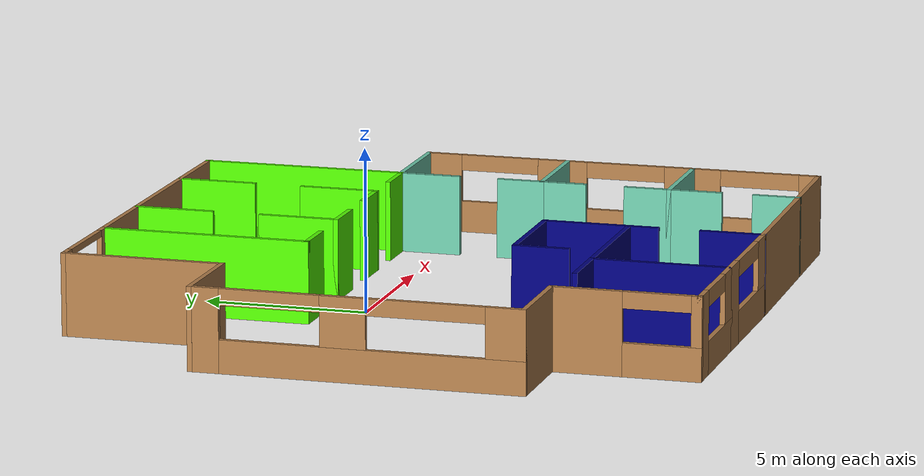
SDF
<?xml version='1.0'?>
<sdf version='1.6'>
  <model name='Office_Building'>
    <pose frame=''>1.54423 -1.89975 0 0 -0 0</pose>
    <link name='Wall_1'>
      <pose frame=''>-4.9967 9.51095 0 0 -0 0</pose>
      <visual name='Wall_1_Visual_0'>
        <pose frame=''>-1.46283 0 1.25 0 -0 0</pose>
        <geometry>
          <box>
            <size>0.574332 0.15 2.5</size>
          </box>
        </geometry>
        <material>
          <script>
            <uri>file://media/materials/scripts/gazebo.material</uri>
            <name>Gazebo/Wood</name>
          </script>
          <ambient>1 1 1 1</ambient>
        </material>
        <meta>
          <layer>0</layer>
        </meta>
      </visual>
      <collision name='Wall_1_Collision_0'>
        <geometry>
          <box>
            <size>0.574332 0.15 2.5</size>
          </box>
        </geometry>
        <pose frame=''>-1.46283 0 1.25 0 -0 0</pose>
      </collision>
      <visual name='Wall_1_Visual_1'>
        <pose frame=''>0.287166 0 0.4 0 -0 0</pose>
        <geometry>
          <box>
            <size>2.92567 0.15 0.8</size>
          </box>
        </geometry>
        <material>
          <script>
            <uri>file://media/materials/scripts/gazebo.material</uri>
            <name>Gazebo/Wood</name>
          </script>
          <ambient>1 1 1 1</ambient>
        </material>
        <meta>
          <layer>0</layer>
        </meta>
      </visual>
      <collision name='Wall_1_Collision_1'>
        <geometry>
          <box>
            <size>2.92567 0.15 0.8</size>
          </box>
        </geometry>
        <pose frame=''>0.287166 0 0.4 0 -0 0</pose>
      </collision>
      <visual name='Wall_1_Visual_2'>
        <pose frame=''>1.53717 0 1.65 0 -0 0</pose>
        <geometry>
          <box>
            <size>0.425668 0.15 1.7</size>
          </box>
        </geometry>
        <material>
          <script>
            <uri>file://media/materials/scripts/gazebo.material</uri>
            <name>Gazebo/Wood</name>
          </script>
          <ambient>1 1 1 1</ambient>
        </material>
        <meta>
          <layer>0</layer>
        </meta>
      </visual>
      <collision name='Wall_1_Collision_2'>
        <geometry>
          <box>
            <size>0.425668 0.15 1.7</size>
          </box>
        </geometry>
        <pose frame=''>1.53717 0 1.65 0 -0 0</pose>
      </collision>
      <visual name='Wall_1_Visual_3'>
        <pose frame=''>0.074332 0 2.4 0 -0 0</pose>
        <geometry>
          <box>
            <size>2.5 0.15 0.2</size>
          </box>
        </geometry>
        <material>
          <script>
            <uri>file://media/materials/scripts/gazebo.material</uri>
            <name>Gazebo/Wood</name>
          </script>
          <ambient>1 1 1 1</ambient>
        </material>
        <meta>
          <layer>0</layer>
        </meta>
      </visual>
      <collision name='Wall_1_Collision_3'>
        <geometry>
          <box>
            <size>2.5 0.15 0.2</size>
          </box>
        </geometry>
        <pose frame=''>0.074332 0 2.4 0 -0 0</pose>
      </collision>
    </link>
    <link name='Wall_12'>
      <collision name='Wall_12_Collision'>
        <geometry>
          <box>
            <size>1.5 0.15 2.5</size>
          </box>
        </geometry>
        <pose frame=''>0 0 1.25 0 -0 0</pose>
      </collision>
      <visual name='Wall_12_Visual'>
        <pose frame=''>0 0 1.25 0 -0 0</pose>
        <geometry>
          <box>
            <size>1.5 0.15 2.5</size>
          </box>
        </geometry>
        <material>
          <script>
            <uri>file://media/materials/scripts/gazebo.material</uri>
            <name>Gazebo/Grey</name>
          </script>
          <ambient>0.333333 1 0 1</ambient>
        </material>
        <meta>
          <layer>0</layer>
        </meta>
      </visual>
      <pose frame=''>0.345497 3.18997 0 0 -0 0</pose>
    </link>
    <link name='Wall_16'>
      <collision name='Wall_16_Collision'>
        <geometry>
          <box>
            <size>1.5 0.15 2.5</size>
          </box>
        </geometry>
        <pose frame=''>0 0 1.25 0 -0 0</pose>
      </collision>
      <visual name='Wall_16_Visual'>
        <pose frame=''>0 0 1.25 0 -0 0</pose>
        <geometry>
          <box>
            <size>1.5 0.15 2.5</size>
          </box>
        </geometry>
        <material>
          <script>
            <uri>file://media/materials/scripts/gazebo.material</uri>
            <name>Gazebo/Grey</name>
          </script>
          <ambient>0.333333 1 0 1</ambient>
        </material>
        <meta>
          <layer>0</layer>
        </meta>
      </visual>
      <pose frame=''>3.0455 3.18997 0 0 -0 0</pose>
    </link>
    <link name='Wall_18'>
      <collision name='Wall_18_Collision'>
        <geometry>
          <box>
            <size>1.5 0.15 2.5</size>
          </box>
        </geometry>
        <pose frame=''>0 0 1.25 0 -0 0</pose>
      </collision>
      <visual name='Wall_18_Visual'>
        <pose frame=''>0 0 1.25 0 -0 0</pose>
        <geometry>
          <box>
            <size>1.5 0.15 2.5</size>
          </box>
        </geometry>
        <material>
          <script>
            <uri>file://media/materials/scripts/gazebo.material</uri>
            <name>Gazebo/Grey</name>
          </script>
          <ambient>0.333333 1 0 1</ambient>
        </material>
        <meta>
          <layer>0</layer>
        </meta>
      </visual>
      <pose frame=''>5.7455 3.18997 0 0 -0 0</pose>
    </link>
    <link name='Wall_2'>
      <collision name='Wall_2_Collision'>
        <geometry>
          <box>
            <size>6.5 0.15 2.5</size>
          </box>
        </geometry>
        <pose frame=''>0 0 1.25 0 -0 0</pose>
      </collision>
      <visual name='Wall_2_Visual'>
        <pose frame=''>0 0 1.25 0 -0 0</pose>
        <geometry>
          <box>
            <size>6.5 0.15 2.5</size>
          </box>
        </geometry>
        <material>
          <script>
            <uri>file://media/materials/scripts/gazebo.material</uri>
            <name>Gazebo/Grey</name>
          </script>
          <ambient>0.333333 1 0 1</ambient>
        </material>
        <meta>
          <layer>0</layer>
        </meta>
      </visual>
      <pose frame=''>-3.3217 6.33595 0 0 0 -1.5708</pose>
    </link>
    <link name='Wall_22'>
      <collision name='Wall_22_Collision'>
        <geometry>
          <box>
            <size>6.5 0.15 2.5</size>
          </box>
        </geometry>
        <pose frame=''>0 0 1.25 0 -0 0</pose>
      </collision>
      <visual name='Wall_22_Visual'>
        <pose frame=''>0 0 1.25 0 -0 0</pose>
        <geometry>
          <box>
            <size>6.5 0.15 2.5</size>
          </box>
        </geometry>
        <material>
          <script>
            <uri>file://media/materials/scripts/gazebo.material</uri>
            <name>Gazebo/Grey</name>
          </script>
          <ambient>0.333333 1 0 1</ambient>
        </material>
        <meta>
          <layer>0</layer>
        </meta>
      </visual>
      <pose frame=''>6.4205 6.36497 0 0 -0 1.5708</pose>
    </link>
    <link name='Wall_23'>
      <collision name='Wall_23_Collision'>
        <geometry>
          <box>
            <size>9.89224 0.15 2.5</size>
          </box>
        </geometry>
        <pose frame=''>0 0 1.25 0 -0 0</pose>
      </collision>
      <visual name='Wall_23_Visual'>
        <pose frame=''>0 0 1.25 0 -0 0</pose>
        <geometry>
          <box>
            <size>9.89224 0.15 2.5</size>
          </box>
        </geometry>
        <material>
          <script>
            <uri>file://media/materials/scripts/gazebo.material</uri>
            <name>Gazebo/Wood</name>
          </script>
          <ambient>1 1 1 1</ambient>
        </material>
        <meta>
          <layer>0</layer>
        </meta>
      </visual>
      <pose frame=''>1.5494 9.52546 0 0 0 -3.13861</pose>
    </link>
    <link name='Wall_25'>
      <collision name='Wall_25_Collision'>
        <geometry>
          <box>
            <size>2.5 0.15 2.5</size>
          </box>
        </geometry>
        <pose frame=''>0 0 1.25 0 -0 0</pose>
      </collision>
      <visual name='Wall_25_Visual'>
        <pose frame=''>0 0 1.25 0 -0 0</pose>
        <geometry>
          <box>
            <size>2.5 0.15 2.5</size>
          </box>
        </geometry>
        <material>
          <script>
            <uri>file://media/materials/scripts/gazebo.material</uri>
            <name>Gazebo/Grey</name>
          </script>
          <ambient>0.333333 1 0 1</ambient>
        </material>
        <meta>
          <layer>0</layer>
        </meta>
      </visual>
      <pose frame=''>-0.329504 4.36497 0 0 -0 1.5708</pose>
    </link>
    <link name='Wall_3'>
      <collision name='Wall_3_Collision'>
        <geometry>
          <box>
            <size>1.5 0.15 2.5</size>
          </box>
        </geometry>
        <pose frame=''>0 0 1.25 0 -0 0</pose>
      </collision>
      <visual name='Wall_3_Visual'>
        <pose frame=''>0 0 1.25 0 -0 0</pose>
        <geometry>
          <box>
            <size>1.5 0.15 2.5</size>
          </box>
        </geometry>
        <material>
          <script>
            <uri>file://media/materials/scripts/gazebo.material</uri>
            <name>Gazebo/Grey</name>
          </script>
          <ambient>0.333333 1 0 1</ambient>
        </material>
        <meta>
          <layer>0</layer>
        </meta>
      </visual>
      <pose frame=''>-2.6467 3.16095 0 0 -0 0</pose>
    </link>
    <link name='Wall_30'>
      <collision name='Wall_30_Collision'>
        <geometry>
          <box>
            <size>2.5 0.15 2.5</size>
          </box>
        </geometry>
        <pose frame=''>0 0 1.25 0 -0 0</pose>
      </collision>
      <visual name='Wall_30_Visual'>
        <pose frame=''>0 0 1.25 0 -0 0</pose>
        <geometry>
          <box>
            <size>2.5 0.15 2.5</size>
          </box>
        </geometry>
        <material>
          <script>
            <uri>file://media/materials/scripts/gazebo.material</uri>
            <name>Gazebo/Grey</name>
          </script>
          <ambient>0.333333 1 0 1</ambient>
        </material>
        <meta>
          <layer>0</layer>
        </meta>
      </visual>
      <pose frame=''>-0.329504 8.31497 0 0 -0 1.5708</pose>
    </link>
    <link name='Wall_32'>
      <collision name='Wall_32_Collision'>
        <geometry>
          <box>
            <size>2.5 0.15 2.5</size>
          </box>
        </geometry>
        <pose frame=''>0 0 1.25 0 -0 0</pose>
      </collision>
      <visual name='Wall_32_Visual'>
        <pose frame=''>0 0 1.25 0 -0 0</pose>
        <geometry>
          <box>
            <size>2.5 0.15 2.5</size>
          </box>
        </geometry>
        <material>
          <script>
            <uri>file://media/materials/scripts/gazebo.material</uri>
            <name>Gazebo/Grey</name>
          </script>
          <ambient>0.333333 1 0 1</ambient>
        </material>
        <meta>
          <layer>0</layer>
        </meta>
      </visual>
      <pose frame=''>3.7205 4.36497 0 0 -0 1.5708</pose>
    </link>
    <link name='Wall_36'>
      <collision name='Wall_36_Collision'>
        <geometry>
          <box>
            <size>2.5 0.15 2.5</size>
          </box>
        </geometry>
        <pose frame=''>0 0 1.25 0 -0 0</pose>
      </collision>
      <visual name='Wall_36_Visual'>
        <pose frame=''>0 0 1.25 0 -0 0</pose>
        <geometry>
          <box>
            <size>2.5 0.15 2.5</size>
          </box>
        </geometry>
        <material>
          <script>
            <uri>file://media/materials/scripts/gazebo.material</uri>
            <name>Gazebo/Grey</name>
          </script>
          <ambient>0.333333 1 0 1</ambient>
        </material>
        <meta>
          <layer>0</layer>
        </meta>
      </visual>
      <pose frame=''>3.7205 8.31497 0 0 -0 1.5708</pose>
    </link>
    <link name='Wall_45'>
      <pose frame=''>-9.5217 -0.264053 0 0 0 -1.5708</pose>
      <visual name='Wall_45_Visual_0'>
        <pose frame=''>-4.52501 0 1.25 0 -0 0</pose>
        <geometry>
          <box>
            <size>0.949979 0.15 2.5</size>
          </box>
        </geometry>
        <material>
          <script>
            <uri>file://media/materials/scripts/gazebo.material</uri>
            <name>Gazebo/Wood</name>
          </script>
          <ambient>1 1 1 1</ambient>
        </material>
        <meta>
          <layer>0</layer>
        </meta>
      </visual>
      <collision name='Wall_45_Collision_0'>
        <geometry>
          <box>
            <size>0.949979 0.15 2.5</size>
          </box>
        </geometry>
        <pose frame=''>-4.52501 0 1.25 0 -0 0</pose>
      </collision>
      <visual name='Wall_45_Visual_1'>
        <pose frame=''>0.47499 0 0.5 0 -0 0</pose>
        <geometry>
          <box>
            <size>9.05002 0.15 1</size>
          </box>
        </geometry>
        <material>
          <script>
            <uri>file://media/materials/scripts/gazebo.material</uri>
            <name>Gazebo/Wood</name>
          </script>
          <ambient>1 1 1 1</ambient>
        </material>
        <meta>
          <layer>0</layer>
        </meta>
      </visual>
      <collision name='Wall_45_Collision_1'>
        <geometry>
          <box>
            <size>9.05002 0.15 1</size>
          </box>
        </geometry>
        <pose frame=''>0.47499 0 0.5 0 -0 0</pose>
      </collision>
      <visual name='Wall_45_Visual_2'>
        <pose frame=''>-0.367725 0 1.75 0 -0 0</pose>
        <geometry>
          <box>
            <size>1.36459 0.15 1.5</size>
          </box>
        </geometry>
        <material>
          <script>
            <uri>file://media/materials/scripts/gazebo.material</uri>
            <name>Gazebo/Wood</name>
          </script>
          <ambient>1 1 1 1</ambient>
        </material>
        <meta>
          <layer>0</layer>
        </meta>
      </visual>
      <collision name='Wall_45_Collision_2'>
        <geometry>
          <box>
            <size>1.36459 0.15 1.5</size>
          </box>
        </geometry>
        <pose frame=''>-0.367725 0 1.75 0 -0 0</pose>
      </collision>
      <visual name='Wall_45_Visual_3'>
        <pose frame=''>4.40728 0 1.75 0 -0 0</pose>
        <geometry>
          <box>
            <size>1.18543 0.15 1.5</size>
          </box>
        </geometry>
        <material>
          <script>
            <uri>file://media/materials/scripts/gazebo.material</uri>
            <name>Gazebo/Wood</name>
          </script>
          <ambient>1 1 1 1</ambient>
        </material>
        <meta>
          <layer>0</layer>
        </meta>
      </visual>
      <collision name='Wall_45_Collision_3'>
        <geometry>
          <box>
            <size>1.18543 0.15 1.5</size>
          </box>
        </geometry>
        <pose frame=''>4.40728 0 1.75 0 -0 0</pose>
      </collision>
      <visual name='Wall_45_Visual_4'>
        <pose frame=''>-2.55002 0 2.25 0 -0 0</pose>
        <geometry>
          <box>
            <size>3 0.15 0.5</size>
          </box>
        </geometry>
        <material>
          <script>
            <uri>file://media/materials/scripts/gazebo.material</uri>
            <name>Gazebo/Wood</name>
          </script>
          <ambient>1 1 1 1</ambient>
        </material>
        <meta>
          <layer>0</layer>
        </meta>
      </visual>
      <collision name='Wall_45_Collision_4'>
        <geometry>
          <box>
            <size>3 0.15 0.5</size>
          </box>
        </geometry>
        <pose frame=''>-2.55002 0 2.25 0 -0 0</pose>
      </collision>
      <visual name='Wall_45_Visual_5'>
        <pose frame=''>2.06457 0 2.25 0 -0 0</pose>
        <geometry>
          <box>
            <size>3.5 0.15 0.5</size>
          </box>
        </geometry>
        <material>
          <script>
            <uri>file://media/materials/scripts/gazebo.material</uri>
            <name>Gazebo/Wood</name>
          </script>
          <ambient>1 1 1 1</ambient>
        </material>
        <meta>
          <layer>0</layer>
        </meta>
      </visual>
      <collision name='Wall_45_Collision_5'>
        <geometry>
          <box>
            <size>3.5 0.15 0.5</size>
          </box>
        </geometry>
        <pose frame=''>2.06457 0 2.25 0 -0 0</pose>
      </collision>
    </link>
    <link name='Wall_46'>
      <collision name='Wall_46_Collision'>
        <geometry>
          <box>
            <size>3 0.15 2.5</size>
          </box>
        </geometry>
        <pose frame=''>0 0 1.25 0 -0 0</pose>
      </collision>
      <visual name='Wall_46_Visual'>
        <pose frame=''>0 0 1.25 0 -0 0</pose>
        <geometry>
          <box>
            <size>3 0.15 2.5</size>
          </box>
        </geometry>
        <material>
          <script>
            <uri>file://media/materials/scripts/gazebo.material</uri>
            <name>Gazebo/Wood</name>
          </script>
          <ambient>1 1 1 1</ambient>
        </material>
        <meta>
          <layer>0</layer>
        </meta>
      </visual>
      <pose frame=''>-8.0967 -5.18905 0 0 -0 0</pose>
    </link>
    <link name='Wall_48'>
      <pose frame=''>-6.6717 -7.36405 0 0 0 -1.5708</pose>
      <visual name='Wall_48_Visual_0'>
        <pose frame=''>-1.15861 0 1.25 0 -0 0</pose>
        <geometry>
          <box>
            <size>2.18277 0.15 2.5</size>
          </box>
        </geometry>
        <material>
          <script>
            <uri>file://media/materials/scripts/gazebo.material</uri>
            <name>Gazebo/Wood</name>
          </script>
          <ambient>0 0 0.498039 1</ambient>
        </material>
        <meta>
          <layer>0</layer>
        </meta>
      </visual>
      <collision name='Wall_48_Collision_0'>
        <geometry>
          <box>
            <size>2.18277 0.15 2.5</size>
          </box>
        </geometry>
        <pose frame=''>-1.15861 0 1.25 0 -0 0</pose>
      </collision>
      <visual name='Wall_48_Visual_1'>
        <pose frame=''>1.09139 0 0.5 0 -0 0</pose>
        <geometry>
          <box>
            <size>2.31723 0.15 1</size>
          </box>
        </geometry>
        <material>
          <script>
            <uri>file://media/materials/scripts/gazebo.material</uri>
            <name>Gazebo/Wood</name>
          </script>
          <ambient>0 0 0.498039 1</ambient>
        </material>
        <meta>
          <layer>0</layer>
        </meta>
      </visual>
      <collision name='Wall_48_Collision_1'>
        <geometry>
          <box>
            <size>2.31723 0.15 1</size>
          </box>
        </geometry>
        <pose frame=''>1.09139 0 0.5 0 -0 0</pose>
      </collision>
      <visual name='Wall_48_Visual_2'>
        <pose frame=''>2.09139 0 1.75 0 -0 0</pose>
        <geometry>
          <box>
            <size>0.317226 0.15 1.5</size>
          </box>
        </geometry>
        <material>
          <script>
            <uri>file://media/materials/scripts/gazebo.material</uri>
            <name>Gazebo/Wood</name>
          </script>
          <ambient>0 0 0.498039 1</ambient>
        </material>
        <meta>
          <layer>0</layer>
        </meta>
      </visual>
      <collision name='Wall_48_Collision_2'>
        <geometry>
          <box>
            <size>0.317226 0.15 1.5</size>
          </box>
        </geometry>
        <pose frame=''>2.09139 0 1.75 0 -0 0</pose>
      </collision>
      <visual name='Wall_48_Visual_3'>
        <pose frame=''>0.932774 0 2.25 0 -0 0</pose>
        <geometry>
          <box>
            <size>2 0.15 0.5</size>
          </box>
        </geometry>
        <material>
          <script>
            <uri>file://media/materials/scripts/gazebo.material</uri>
            <name>Gazebo/Wood</name>
          </script>
          <ambient>0 0 0.498039 1</ambient>
        </material>
        <meta>
          <layer>0</layer>
        </meta>
      </visual>
      <collision name='Wall_48_Collision_3'>
        <geometry>
          <box>
            <size>2 0.15 0.5</size>
          </box>
        </geometry>
        <pose frame=''>0.932774 0 2.25 0 -0 0</pose>
      </collision>
    </link>
    <link name='Wall_49'>
      <pose frame=''>-4.8717 -9.53905 0 0 -0 0</pose>
      <visual name='Wall_49_Visual_0'>
        <pose frame=''>-1.4581 0 1.25 0 -0 0</pose>
        <geometry>
          <box>
            <size>0.833803 0.15 2.5</size>
          </box>
        </geometry>
        <material>
          <script>
            <uri>file://media/materials/scripts/gazebo.material</uri>
            <name>Gazebo/Wood</name>
          </script>
          <ambient>0 0 0.498039 1</ambient>
        </material>
        <meta>
          <layer>0</layer>
        </meta>
      </visual>
      <collision name='Wall_49_Collision_0'>
        <geometry>
          <box>
            <size>0.833803 0.15 2.5</size>
          </box>
        </geometry>
        <pose frame=''>-1.4581 0 1.25 0 -0 0</pose>
      </collision>
      <visual name='Wall_49_Visual_1'>
        <pose frame=''>0.416901 0 0.5 0 -0 0</pose>
        <geometry>
          <box>
            <size>2.9162 0.15 1</size>
          </box>
        </geometry>
        <material>
          <script>
            <uri>file://media/materials/scripts/gazebo.material</uri>
            <name>Gazebo/Wood</name>
          </script>
          <ambient>0 0 0.498039 1</ambient>
        </material>
        <meta>
          <layer>0</layer>
        </meta>
      </visual>
      <collision name='Wall_49_Collision_1'>
        <geometry>
          <box>
            <size>2.9162 0.15 1</size>
          </box>
        </geometry>
        <pose frame=''>0.416901 0 0.5 0 -0 0</pose>
      </collision>
      <visual name='Wall_49_Visual_2'>
        <pose frame=''>1.4169 0 1.75 0 -0 0</pose>
        <geometry>
          <box>
            <size>0.916197 0.15 1.5</size>
          </box>
        </geometry>
        <material>
          <script>
            <uri>file://media/materials/scripts/gazebo.material</uri>
            <name>Gazebo/Wood</name>
          </script>
          <ambient>0 0 0.498039 1</ambient>
        </material>
        <meta>
          <layer>0</layer>
        </meta>
      </visual>
      <collision name='Wall_49_Collision_2'>
        <geometry>
          <box>
            <size>0.916197 0.15 1.5</size>
          </box>
        </geometry>
        <pose frame=''>1.4169 0 1.75 0 -0 0</pose>
      </collision>
      <visual name='Wall_49_Visual_3'>
        <pose frame=''>-0.041197 0 2.25 0 -0 0</pose>
        <geometry>
          <box>
            <size>2 0.15 0.5</size>
          </box>
        </geometry>
        <material>
          <script>
            <uri>file://media/materials/scripts/gazebo.material</uri>
            <name>Gazebo/Wood</name>
          </script>
          <ambient>0 0 0.498039 1</ambient>
        </material>
        <meta>
          <layer>0</layer>
        </meta>
      </visual>
      <collision name='Wall_49_Collision_3'>
        <geometry>
          <box>
            <size>2 0.15 0.5</size>
          </box>
        </geometry>
        <pose frame=''>-0.041197 0 2.25 0 -0 0</pose>
      </collision>
    </link>
    <link name='Wall_50'>
      <collision name='Wall_50_Collision'>
        <geometry>
          <box>
            <size>4.25 0.15 2.5</size>
          </box>
        </geometry>
        <pose frame=''>0 0 1.25 0 -0 0</pose>
      </collision>
      <visual name='Wall_50_Visual'>
        <pose frame=''>0 0 1.25 0 -0 0</pose>
        <geometry>
          <box>
            <size>4.25 0.15 2.5</size>
          </box>
        </geometry>
        <material>
          <script>
            <uri>file://media/materials/scripts/gazebo.material</uri>
            <name>Gazebo/Grey</name>
          </script>
          <ambient>0 0 0.498039 1</ambient>
        </material>
        <meta>
          <layer>0</layer>
        </meta>
      </visual>
      <pose frame=''>-3.0717 -7.48905 0 0 -0 1.5708</pose>
    </link>
    <link name='Wall_51'>
      <collision name='Wall_51_Collision'>
        <geometry>
          <box>
            <size>4.5 0.15 2.5</size>
          </box>
        </geometry>
        <pose frame=''>0 0 1.25 0 -0 0</pose>
      </collision>
      <visual name='Wall_51_Visual'>
        <pose frame=''>0 0 1.25 0 -0 0</pose>
        <geometry>
          <box>
            <size>4.5 0.15 2.5</size>
          </box>
        </geometry>
        <material>
          <script>
            <uri>file://media/materials/scripts/gazebo.material</uri>
            <name>Gazebo/Grey</name>
          </script>
          <ambient>0 0 0.498039 1</ambient>
        </material>
        <meta>
          <layer>0</layer>
        </meta>
      </visual>
      <pose frame=''>-0.896696 -5.43905 0 0 -0 0</pose>
    </link>
    <link name='Wall_52'>
      <collision name='Wall_52_Collision'>
        <geometry>
          <box>
            <size>2.75 0.15 2.5</size>
          </box>
        </geometry>
        <pose frame=''>0 0 1.25 0 -0 0</pose>
      </collision>
      <visual name='Wall_52_Visual'>
        <pose frame=''>0 0 1.25 0 -0 0</pose>
        <geometry>
          <box>
            <size>2.75 0.15 2.5</size>
          </box>
        </geometry>
        <material>
          <script>
            <uri>file://media/materials/scripts/gazebo.material</uri>
            <name>Gazebo/Grey</name>
          </script>
          <ambient>0 0 0.498039 1</ambient>
        </material>
        <meta>
          <layer>0</layer>
        </meta>
      </visual>
      <pose frame=''>1.2783 -4.13905 0 0 -0 1.5708</pose>
    </link>
    <link name='Wall_53'>
      <collision name='Wall_53_Collision'>
        <geometry>
          <box>
            <size>3.5 0.15 2.5</size>
          </box>
        </geometry>
        <pose frame=''>0 0 1.25 0 -0 0</pose>
      </collision>
      <visual name='Wall_53_Visual'>
        <pose frame=''>0 0 1.25 0 -0 0</pose>
        <geometry>
          <box>
            <size>3.5 0.15 2.5</size>
          </box>
        </geometry>
        <material>
          <script>
            <uri>file://media/materials/scripts/gazebo.material</uri>
            <name>Gazebo/Grey</name>
          </script>
          <ambient>0 0 0.498039 1</ambient>
        </material>
        <meta>
          <layer>0</layer>
        </meta>
      </visual>
      <pose frame=''>-0.396696 -2.83905 0 0 -0 3.14159</pose>
    </link>
    <link name='Wall_54'>
      <collision name='Wall_54_Collision'>
        <geometry>
          <box>
            <size>1.75 0.15 2.5</size>
          </box>
        </geometry>
        <pose frame=''>0 0 1.25 0 -0 0</pose>
      </collision>
      <visual name='Wall_54_Visual'>
        <pose frame=''>0 0 1.25 0 -0 0</pose>
        <geometry>
          <box>
            <size>1.75 0.15 2.5</size>
          </box>
        </geometry>
        <material>
          <script>
            <uri>file://media/materials/scripts/gazebo.material</uri>
            <name>Gazebo/Grey</name>
          </script>
          <ambient>0 0 0.498039 1</ambient>
        </material>
        <meta>
          <layer>0</layer>
        </meta>
      </visual>
      <pose frame=''>-2.0717 -3.63905 0 0 0 -1.5708</pose>
    </link>
    <link name='Wall_56'>
      <collision name='Wall_56_Collision'>
        <geometry>
          <box>
            <size>2 0.15 2.5</size>
          </box>
        </geometry>
        <pose frame=''>0 0 1.25 0 -0 0</pose>
      </collision>
      <visual name='Wall_56_Visual'>
        <pose frame=''>0 0 1.25 0 -0 0</pose>
        <geometry>
          <box>
            <size>2 0.15 2.5</size>
          </box>
        </geometry>
        <material>
          <script>
            <uri>file://media/materials/scripts/gazebo.material</uri>
            <name>Gazebo/Grey</name>
          </script>
          <ambient>0 0 0.498039 1</ambient>
        </material>
        <meta>
          <layer>0</layer>
        </meta>
      </visual>
      <pose frame=''>-3.9967 -5.43905 0 0 -0 3.14159</pose>
    </link>
    <link name='Wall_59'>
      <pose frame=''>-0.896696 -9.53905 0 0 -0 0</pose>
      <visual name='Wall_59_Visual_0'>
        <pose frame=''>-1.75844 0 1.25 0 -0 0</pose>
        <geometry>
          <box>
            <size>0.983115 0.15 2.5</size>
          </box>
        </geometry>
        <material>
          <script>
            <uri>file://media/materials/scripts/gazebo.material</uri>
            <name>Gazebo/Wood</name>
          </script>
          <ambient>0 0 0.498039 1</ambient>
        </material>
        <meta>
          <layer>0</layer>
        </meta>
      </visual>
      <collision name='Wall_59_Collision_0'>
        <geometry>
          <box>
            <size>0.983115 0.15 2.5</size>
          </box>
        </geometry>
        <pose frame=''>-1.75844 0 1.25 0 -0 0</pose>
      </collision>
      <visual name='Wall_59_Visual_1'>
        <pose frame=''>0.491557 0 0.5 0 -0 0</pose>
        <geometry>
          <box>
            <size>3.51688 0.15 1</size>
          </box>
        </geometry>
        <material>
          <script>
            <uri>file://media/materials/scripts/gazebo.material</uri>
            <name>Gazebo/Wood</name>
          </script>
          <ambient>0 0 0.498039 1</ambient>
        </material>
        <meta>
          <layer>0</layer>
        </meta>
      </visual>
      <collision name='Wall_59_Collision_1'>
        <geometry>
          <box>
            <size>3.51688 0.15 1</size>
          </box>
        </geometry>
        <pose frame=''>0.491557 0 0.5 0 -0 0</pose>
      </collision>
      <visual name='Wall_59_Visual_2'>
        <pose frame=''>1.74156 0 1.75 0 -0 0</pose>
        <geometry>
          <box>
            <size>1.01689 0.15 1.5</size>
          </box>
        </geometry>
        <material>
          <script>
            <uri>file://media/materials/scripts/gazebo.material</uri>
            <name>Gazebo/Wood</name>
          </script>
          <ambient>0 0 0.498039 1</ambient>
        </material>
        <meta>
          <layer>0</layer>
        </meta>
      </visual>
      <collision name='Wall_59_Collision_2'>
        <geometry>
          <box>
            <size>1.01689 0.15 1.5</size>
          </box>
        </geometry>
        <pose frame=''>1.74156 0 1.75 0 -0 0</pose>
      </collision>
      <visual name='Wall_59_Visual_3'>
        <pose frame=''>-0.016885 0 2.25 0 -0 0</pose>
        <geometry>
          <box>
            <size>2.5 0.15 0.5</size>
          </box>
        </geometry>
        <material>
          <script>
            <uri>file://media/materials/scripts/gazebo.material</uri>
            <name>Gazebo/Wood</name>
          </script>
          <ambient>0 0 0.498039 1</ambient>
        </material>
        <meta>
          <layer>0</layer>
        </meta>
      </visual>
      <collision name='Wall_59_Collision_3'>
        <geometry>
          <box>
            <size>2.5 0.15 0.5</size>
          </box>
        </geometry>
        <pose frame=''>-0.016885 0 2.25 0 -0 0</pose>
      </collision>
    </link>
    <link name='Wall_60'>
      <collision name='Wall_60_Collision'>
        <geometry>
          <box>
            <size>2 0.15 2.5</size>
          </box>
        </geometry>
        <pose frame=''>0 0 1.25 0 -0 0</pose>
      </collision>
      <visual name='Wall_60_Visual'>
        <pose frame=''>0 0 1.25 0 -0 0</pose>
        <geometry>
          <box>
            <size>2 0.15 2.5</size>
          </box>
        </geometry>
        <material>
          <script>
            <uri>file://media/materials/scripts/gazebo.material</uri>
            <name>Gazebo/Grey</name>
          </script>
          <ambient>0 0 0.498039 1</ambient>
        </material>
        <meta>
          <layer>0</layer>
        </meta>
      </visual>
      <pose frame=''>1.2783 -8.61405 0 0 -0 1.5708</pose>
    </link>
    <link name='Wall_63'>
      <collision name='Wall_63_Collision'>
        <geometry>
          <box>
            <size>1 0.15 2.5</size>
          </box>
        </geometry>
        <pose frame=''>0 0 1.25 0 -0 0</pose>
      </collision>
      <visual name='Wall_63_Visual'>
        <pose frame=''>0 0 1.25 0 -0 0</pose>
        <geometry>
          <box>
            <size>1 0.15 2.5</size>
          </box>
        </geometry>
        <material>
          <script>
            <uri>file://media/materials/scripts/gazebo.material</uri>
            <name>Gazebo/Grey</name>
          </script>
          <ambient>0 0 0.498039 1</ambient>
        </material>
        <meta>
          <layer>0</layer>
        </meta>
      </visual>
      <pose frame=''>1.2783 -5.86405 0 0 0 -1.5708</pose>
    </link>
    <link name='Wall_65'>
      <collision name='Wall_65_Collision'>
        <geometry>
          <box>
            <size>3.25 0.15 2.5</size>
          </box>
        </geometry>
        <pose frame=''>0 0 1.25 0 -0 0</pose>
      </collision>
      <visual name='Wall_65_Visual'>
        <pose frame=''>0 0 1.25 0 -0 0</pose>
        <geometry>
          <box>
            <size>3.25 0.15 2.5</size>
          </box>
        </geometry>
        <material>
          <script>
            <uri>file://media/materials/scripts/gazebo.material</uri>
            <name>Gazebo/Grey</name>
          </script>
          <ambient>0.435294 0.796078 0.67451 1</ambient>
        </material>
        <meta>
          <layer>0</layer>
        </meta>
      </visual>
      <pose frame=''>7.9705 3.18997 0 0 -0 0</pose>
    </link>
    <link name='Wall_66'>
      <pose frame=''>9.5205 -3.11003 0 0 0 -1.5708</pose>
      <visual name='Wall_66_Visual_0'>
        <pose frame=''>-5.79185 0 1.25 0 -0 0</pose>
        <geometry>
          <box>
            <size>1.1663 0.15 2.5</size>
          </box>
        </geometry>
        <material>
          <script>
            <uri>file://media/materials/scripts/gazebo.material</uri>
            <name>Gazebo/Wood</name>
          </script>
          <ambient>0.435294 0.796078 0.67451 1</ambient>
        </material>
        <meta>
          <layer>0</layer>
        </meta>
      </visual>
      <collision name='Wall_66_Collision_0'>
        <geometry>
          <box>
            <size>1.1663 0.15 2.5</size>
          </box>
        </geometry>
        <pose frame=''>-5.79185 0 1.25 0 -0 0</pose>
      </collision>
      <visual name='Wall_66_Visual_1'>
        <pose frame=''>0.583151 0 0.5 0 -0 0</pose>
        <geometry>
          <box>
            <size>11.5837 0.15 1</size>
          </box>
        </geometry>
        <material>
          <script>
            <uri>file://media/materials/scripts/gazebo.material</uri>
            <name>Gazebo/Wood</name>
          </script>
          <ambient>0.435294 0.796078 0.67451 1</ambient>
        </material>
        <meta>
          <layer>0</layer>
        </meta>
      </visual>
      <collision name='Wall_66_Collision_1'>
        <geometry>
          <box>
            <size>11.5837 0.15 1</size>
          </box>
        </geometry>
        <pose frame=''>0.583151 0 0.5 0 -0 0</pose>
      </collision>
      <visual name='Wall_66_Visual_2'>
        <pose frame=''>-1.90874 0 1.75 0 -0 0</pose>
        <geometry>
          <box>
            <size>1.59992 0.15 1.5</size>
          </box>
        </geometry>
        <material>
          <script>
            <uri>file://media/materials/scripts/gazebo.material</uri>
            <name>Gazebo/Wood</name>
          </script>
          <ambient>0.435294 0.796078 0.67451 1</ambient>
        </material>
        <meta>
          <layer>0</layer>
        </meta>
      </visual>
      <collision name='Wall_66_Collision_2'>
        <geometry>
          <box>
            <size>1.59992 0.15 1.5</size>
          </box>
        </geometry>
        <pose frame=''>-1.90874 0 1.75 0 -0 0</pose>
      </collision>
      <visual name='Wall_66_Visual_3'>
        <pose frame=''>2.29484 0 1.75 0 -0 0</pose>
        <geometry>
          <box>
            <size>1.80724 0.15 1.5</size>
          </box>
        </geometry>
        <material>
          <script>
            <uri>file://media/materials/scripts/gazebo.material</uri>
            <name>Gazebo/Wood</name>
          </script>
          <ambient>0.435294 0.796078 0.67451 1</ambient>
        </material>
        <meta>
          <layer>0</layer>
        </meta>
      </visual>
      <collision name='Wall_66_Collision_3'>
        <geometry>
          <box>
            <size>1.80724 0.15 1.5</size>
          </box>
        </geometry>
        <pose frame=''>2.29484 0 1.75 0 -0 0</pose>
      </collision>
      <visual name='Wall_66_Visual_4'>
        <pose frame=''>6.03673 0 1.75 0 -0 0</pose>
        <geometry>
          <box>
            <size>0.676535 0.15 1.5</size>
          </box>
        </geometry>
        <material>
          <script>
            <uri>file://media/materials/scripts/gazebo.material</uri>
            <name>Gazebo/Wood</name>
          </script>
          <ambient>0.435294 0.796078 0.67451 1</ambient>
        </material>
        <meta>
          <layer>0</layer>
        </meta>
      </visual>
      <collision name='Wall_66_Collision_4'>
        <geometry>
          <box>
            <size>0.676535 0.15 1.5</size>
          </box>
        </geometry>
        <pose frame=''>6.03673 0 1.75 0 -0 0</pose>
      </collision>
      <visual name='Wall_66_Visual_5'>
        <pose frame=''>-3.9587 0 2.25 0 -0 0</pose>
        <geometry>
          <box>
            <size>2.5 0.15 0.5</size>
          </box>
        </geometry>
        <material>
          <script>
            <uri>file://media/materials/scripts/gazebo.material</uri>
            <name>Gazebo/Wood</name>
          </script>
          <ambient>0.435294 0.796078 0.67451 1</ambient>
        </material>
        <meta>
          <layer>0</layer>
        </meta>
      </visual>
      <collision name='Wall_66_Collision_5'>
        <geometry>
          <box>
            <size>2.5 0.15 0.5</size>
          </box>
        </geometry>
        <pose frame=''>-3.9587 0 2.25 0 -0 0</pose>
      </collision>
      <visual name='Wall_66_Visual_6'>
        <pose frame=''>0.141222 0 2.25 0 -0 0</pose>
        <geometry>
          <box>
            <size>2.5 0.15 0.5</size>
          </box>
        </geometry>
        <material>
          <script>
            <uri>file://media/materials/scripts/gazebo.material</uri>
            <name>Gazebo/Wood</name>
          </script>
          <ambient>0.435294 0.796078 0.67451 1</ambient>
        </material>
        <meta>
          <layer>0</layer>
        </meta>
      </visual>
      <collision name='Wall_66_Collision_6'>
        <geometry>
          <box>
            <size>2.5 0.15 0.5</size>
          </box>
        </geometry>
        <pose frame=''>0.141222 0 2.25 0 -0 0</pose>
      </collision>
      <visual name='Wall_66_Visual_7'>
        <pose frame=''>4.44846 0 2.25 0 -0 0</pose>
        <geometry>
          <box>
            <size>2.5 0.15 0.5</size>
          </box>
        </geometry>
        <material>
          <script>
            <uri>file://media/materials/scripts/gazebo.material</uri>
            <name>Gazebo/Wood</name>
          </script>
          <ambient>0.435294 0.796078 0.67451 1</ambient>
        </material>
        <meta>
          <layer>0</layer>
        </meta>
      </visual>
      <collision name='Wall_66_Collision_7'>
        <geometry>
          <box>
            <size>2.5 0.15 0.5</size>
          </box>
        </geometry>
        <pose frame=''>4.44846 0 2.25 0 -0 0</pose>
      </collision>
    </link>
    <link name='Wall_69'>
      <collision name='Wall_69_Collision'>
        <geometry>
          <box>
            <size>2 0.15 2.5</size>
          </box>
        </geometry>
        <pose frame=''>0 0 1.25 0 -0 0</pose>
      </collision>
      <visual name='Wall_69_Visual'>
        <pose frame=''>0 0 1.25 0 -0 0</pose>
        <geometry>
          <box>
            <size>2 0.15 2.5</size>
          </box>
        </geometry>
        <material>
          <script>
            <uri>file://media/materials/scripts/gazebo.material</uri>
            <name>Gazebo/Grey</name>
          </script>
          <ambient>0.435294 0.796078 0.67451 1</ambient>
        </material>
        <meta>
          <layer>0</layer>
        </meta>
      </visual>
      <pose frame=''>6.4205 2.26497 0 0 0 -1.5708</pose>
    </link>
    <link name='Wall_7'>
      <collision name='Wall_7_Collision'>
        <geometry>
          <box>
            <size>5 0.15 2.5</size>
          </box>
        </geometry>
        <pose frame=''>0 0 1.25 0 -0 0</pose>
      </collision>
      <visual name='Wall_7_Visual'>
        <pose frame=''>0 0 1.25 0 -0 0</pose>
        <geometry>
          <box>
            <size>5 0.15 2.5</size>
          </box>
        </geometry>
        <material>
          <script>
            <uri>file://media/materials/scripts/gazebo.material</uri>
            <name>Gazebo/Wood</name>
          </script>
          <ambient>1 1 1 1</ambient>
        </material>
        <meta>
          <layer>0</layer>
        </meta>
      </visual>
      <pose frame=''>-6.6717 7.08595 0 0 0 -1.5708</pose>
    </link>
    <link name='Wall_75'>
      <collision name='Wall_75_Collision'>
        <geometry>
          <box>
            <size>1.5 0.15 2.5</size>
          </box>
        </geometry>
        <pose frame=''>0 0 1.25 0 -0 0</pose>
      </collision>
      <visual name='Wall_75_Visual'>
        <pose frame=''>0 0 1.25 0 -0 0</pose>
        <geometry>
          <box>
            <size>1.5 0.15 2.5</size>
          </box>
        </geometry>
        <material>
          <script>
            <uri>file://media/materials/scripts/gazebo.material</uri>
            <name>Gazebo/Grey</name>
          </script>
          <ambient>0.435294 0.796078 0.67451 1</ambient>
        </material>
        <meta>
          <layer>0</layer>
        </meta>
      </visual>
      <pose frame=''>6.4205 -0.685027 0 0 0 -1.5708</pose>
    </link>
    <link name='Wall_76'>
      <collision name='Wall_76_Collision'>
        <geometry>
          <box>
            <size>3.25 0.15 2.5</size>
          </box>
        </geometry>
        <pose frame=''>0 0 1.25 0 -0 0</pose>
      </collision>
      <visual name='Wall_76_Visual'>
        <pose frame=''>0 0 1.25 0 -0 0</pose>
        <geometry>
          <box>
            <size>3.25 0.15 2.5</size>
          </box>
        </geometry>
        <material>
          <script>
            <uri>file://media/materials/scripts/gazebo.material</uri>
            <name>Gazebo/Grey</name>
          </script>
          <ambient>0.435294 0.796078 0.67451 1</ambient>
        </material>
        <meta>
          <layer>0</layer>
        </meta>
      </visual>
      <pose frame=''>7.9705 -1.36003 0 0 -0 0</pose>
    </link>
    <link name='Wall_78'>
      <collision name='Wall_78_Collision'>
        <geometry>
          <box>
            <size>1.5 0.15 2.5</size>
          </box>
        </geometry>
        <pose frame=''>0 0 1.25 0 -0 0</pose>
      </collision>
      <visual name='Wall_78_Visual'>
        <pose frame=''>0 0 1.25 0 -0 0</pose>
        <geometry>
          <box>
            <size>1.5 0.15 2.5</size>
          </box>
        </geometry>
        <material>
          <script>
            <uri>file://media/materials/scripts/gazebo.material</uri>
            <name>Gazebo/Grey</name>
          </script>
          <ambient>0.435294 0.796078 0.67451 1</ambient>
        </material>
        <meta>
          <layer>0</layer>
        </meta>
      </visual>
      <pose frame=''>6.4205 -2.03503 0 0 0 -1.5708</pose>
    </link>
    <link name='Wall_8'>
      <collision name='Wall_8_Collision'>
        <geometry>
          <box>
            <size>3 0.15 2.5</size>
          </box>
        </geometry>
        <pose frame=''>0 0 1.25 0 -0 0</pose>
      </collision>
      <visual name='Wall_8_Visual'>
        <pose frame=''>0 0 1.25 0 -0 0</pose>
        <geometry>
          <box>
            <size>3 0.15 2.5</size>
          </box>
        </geometry>
        <material>
          <script>
            <uri>file://media/materials/scripts/gazebo.material</uri>
            <name>Gazebo/Wood</name>
          </script>
          <ambient>1 1 1 1</ambient>
        </material>
        <meta>
          <layer>0</layer>
        </meta>
      </visual>
      <pose frame=''>-8.0967 4.66095 0 0 -0 3.14159</pose>
    </link>
    <link name='Wall_80'>
      <collision name='Wall_80_Collision'>
        <geometry>
          <box>
            <size>1.5 0.15 2.5</size>
          </box>
        </geometry>
        <pose frame=''>0 0 1.25 0 -0 0</pose>
      </collision>
      <visual name='Wall_80_Visual'>
        <pose frame=''>0 0 1.25 0 -0 0</pose>
        <geometry>
          <box>
            <size>1.5 0.15 2.5</size>
          </box>
        </geometry>
        <material>
          <script>
            <uri>file://media/materials/scripts/gazebo.material</uri>
            <name>Gazebo/Grey</name>
          </script>
          <ambient>0.435294 0.796078 0.67451 1</ambient>
        </material>
        <meta>
          <layer>0</layer>
        </meta>
      </visual>
      <pose frame=''>6.4205 -4.73503 0 0 0 -1.5708</pose>
    </link>
    <link name='Wall_81'>
      <collision name='Wall_81_Collision'>
        <geometry>
          <box>
            <size>3.25 0.15 2.5</size>
          </box>
        </geometry>
        <pose frame=''>0 0 1.25 0 -0 0</pose>
      </collision>
      <visual name='Wall_81_Visual'>
        <pose frame=''>0 0 1.25 0 -0 0</pose>
        <geometry>
          <box>
            <size>3.25 0.15 2.5</size>
          </box>
        </geometry>
        <material>
          <script>
            <uri>file://media/materials/scripts/gazebo.material</uri>
            <name>Gazebo/Grey</name>
          </script>
          <ambient>0.435294 0.796078 0.67451 1</ambient>
        </material>
        <meta>
          <layer>0</layer>
        </meta>
      </visual>
      <pose frame=''>7.9705 -5.41003 0 0 -0 0</pose>
    </link>
    <link name='Wall_84'>
      <collision name='Wall_84_Collision'>
        <geometry>
          <box>
            <size>1.75 0.15 2.5</size>
          </box>
        </geometry>
        <pose frame=''>0 0 1.25 0 -0 0</pose>
      </collision>
      <visual name='Wall_84_Visual'>
        <pose frame=''>0 0 1.25 0 -0 0</pose>
        <geometry>
          <box>
            <size>1.75 0.15 2.5</size>
          </box>
        </geometry>
        <material>
          <script>
            <uri>file://media/materials/scripts/gazebo.material</uri>
            <name>Gazebo/Grey</name>
          </script>
          <ambient>0.435294 0.796078 0.67451 1</ambient>
        </material>
        <meta>
          <layer>0</layer>
        </meta>
      </visual>
      <pose frame=''>6.4205 -6.21003 0 0 0 -1.5708</pose>
    </link>
    <link name='Wall_88'>
      <collision name='Wall_88_Collision'>
        <geometry>
          <box>
            <size>1.5 0.15 2.5</size>
          </box>
        </geometry>
        <pose frame=''>0 0 1.25 0 -0 0</pose>
      </collision>
      <visual name='Wall_88_Visual'>
        <pose frame=''>0 0 1.25 0 -0 0</pose>
        <geometry>
          <box>
            <size>1.5 0.15 2.5</size>
          </box>
        </geometry>
        <material>
          <script>
            <uri>file://media/materials/scripts/gazebo.material</uri>
            <name>Gazebo/Grey</name>
          </script>
          <ambient>0.435294 0.796078 0.67451 1</ambient>
        </material>
        <meta>
          <layer>0</layer>
        </meta>
      </visual>
      <pose frame=''>6.4205 -8.78503 0 0 0 -1.5708</pose>
    </link>
    <link name='Wall_90'>
      <collision name='Wall_90_Collision'>
        <geometry>
          <box>
            <size>5.2928 0.15 2.5</size>
          </box>
        </geometry>
        <pose frame=''>0 0 1.25 0 -0 0</pose>
      </collision>
      <visual name='Wall_90_Visual'>
        <pose frame=''>0 0 1.25 0 -0 0</pose>
        <geometry>
          <box>
            <size>5.2928 0.15 2.5</size>
          </box>
        </geometry>
        <material>
          <script>
            <uri>file://media/materials/scripts/gazebo.material</uri>
            <name>Gazebo/Wood</name>
          </script>
          <ambient>1 1 1 1</ambient>
        </material>
        <meta>
          <layer>0</layer>
        </meta>
      </visual>
      <pose frame=''>3.8494 -9.49954 0 0 -0 0.015367</pose>
    </link>
    <link name='Wall_91'>
      <collision name='Wall_91_Collision'>
        <geometry>
          <box>
            <size>3.2504 0.15 2.5</size>
          </box>
        </geometry>
        <pose frame=''>0 0 1.25 0 -0 0</pose>
      </collision>
      <visual name='Wall_91_Visual'>
        <pose frame=''>0 0 1.25 0 -0 0</pose>
        <geometry>
          <box>
            <size>3.2504 0.15 2.5</size>
          </box>
        </geometry>
        <material>
          <script>
            <uri>file://media/materials/scripts/gazebo.material</uri>
            <name>Gazebo/Wood</name>
          </script>
          <ambient>0.435294 0.796078 0.67451 1</ambient>
        </material>
        <meta>
          <layer>0</layer>
        </meta>
      </visual>
      <pose frame=''>7.9705 -9.43503 0 0 -0 0.016128</pose>
    </link>
    <static>1</static>
  </model>
</sdf>
